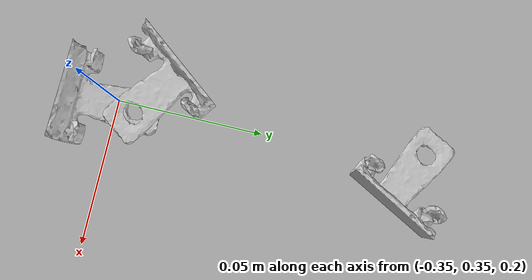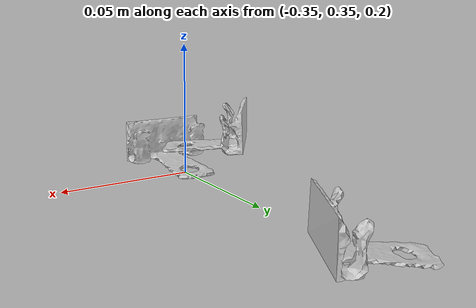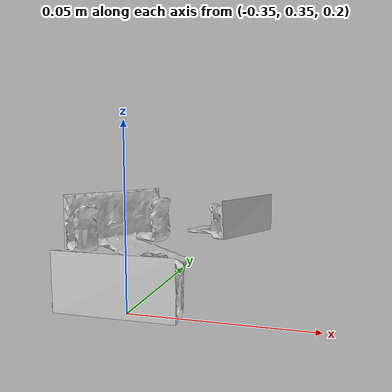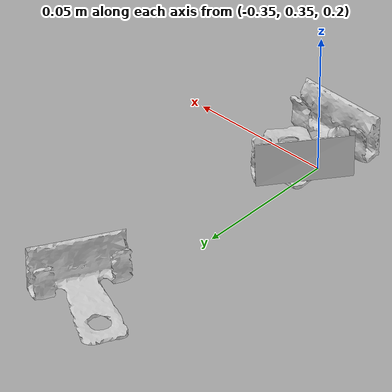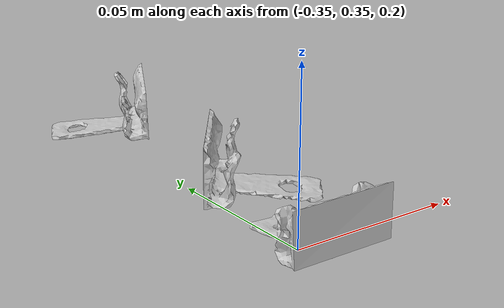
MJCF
<mujoco model="object">
  <default>
      <default class="visual1">
          <geom group="2" type="mesh" contype="0" conaffinity="0" />
      </default>

      <default class="collision1">
          <geom group="3" type="mesh" solimp="0.99 0.99 0.01" solref="0.001 1" condim="4" friction="0.3 0.3 0.8"  margin="0.0005"/>
      </default>
  </default>

  <asset>
    <material name="Iron_Scratched" specular="0.0" shininess="0.0" rgba="0.8 0.8 0.8 1.0"/>
    <material name="highlight" specular="0.0" shininess="0.0" rgba="0.8 0.8 0.0 0.0"/>

    <mesh file="object.obj" scale="10 10 10"/>
    <mesh file="object_collision_0.obj" scale="10 10 10" />
    <mesh file="object_collision_1.obj" scale="10 10 10" /> <!-- lato1 -->
    <mesh file="object_collision_2.obj" scale="10 10 10" /> <!-- lato2 -->
    <mesh file="object_collision_3.obj" scale="10 10 10" />
    <mesh file="object_collision_4.obj" scale="10 10 10" />

  </asset>

  <worldbody>
    <body name="object0" pos="-0.35 0.35 0.21" quat="1 0 0 0">
      <site name="site_obj0" pos="0.002 -0.013 0.0" size="0.017" material="highlight" type="sphere"/>
      <joint type="free" limited = "auto" armature="0.000001"/>
      <inertial pos="0 0 0" mass="0.1" diaginertia="0.0001 0.0001 0.0001"/>
      <geom name = "obj0" material="Iron_Scratched" mesh="object" class="visual1"/>
      <geom mesh="object_collision_0" class="collision1"/>
      <geom mesh="object_collision_1" class="collision1" margin="0.00075"/>
      <geom mesh="object_collision_2" class="collision1" margin="0.00075"/>
      <geom mesh="object_collision_3" class="collision1"/>
      <geom mesh="object_collision_4" class="collision1"/>
    </body>

    <body name="object1" pos="-0.35 0.365 0.22" quat="0.2 0 0 -0.4">
    <site name="site_obj1" pos="0.002 -0.013 0.0" size="0.025" material="highlight" type="sphere"/>
      <joint type="free" limited = "auto" armature="0.000001"/>
      <inertial pos="0 0 0" mass="0.1" diaginertia="0.0001 0.0001 0.0001"/>
      <geom name = "obj1" material="Iron_Scratched" mesh="object" class="visual1"/>
      <geom mesh="object_collision_0" class="collision1"/>
      <geom mesh="object_collision_1" class="collision1" margin="0.00075"/>
      <geom mesh="object_collision_2" class="collision1" margin="0.00075"/>
      <geom mesh="object_collision_3" class="collision1"/>
      <geom mesh="object_collision_4" class="collision1"/>
    </body>

    <body name="object2" pos="-0.35 0.45 0.21" quat="0.5 0 0 0.3">
      <site name="site_obj2" pos="0.002 -0.013 0.0" size="0.002" material="highlight" type="sphere"/>
      <joint type="free" limited = "auto" armature="0.000001"/>
      <inertial pos="0 0 0" mass="0.1" diaginertia="0.0001 0.0001 0.0001"/>
      <geom name = "obj2" material="Iron_Scratched" mesh="object" class="visual1"/>
      <geom mesh="object_collision_0" class="collision1"/>
      <geom mesh="object_collision_1" class="collision1" margin="0.00075"/>
      <geom mesh="object_collision_2" class="collision1" margin="0.00075"/>
      <geom mesh="object_collision_3" class="collision1"/>
      <geom mesh="object_collision_4" class="collision1"/>
    </body>

  </worldbody>
</mujoco>
